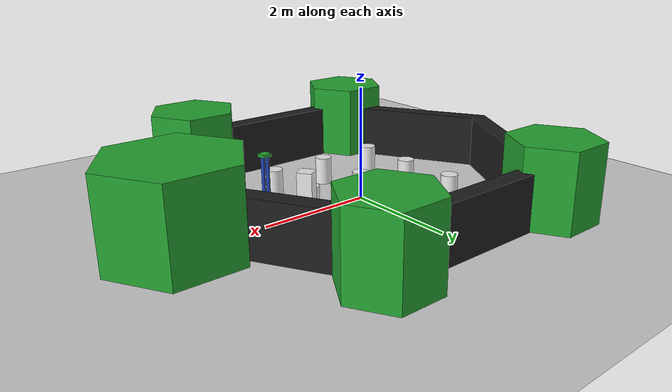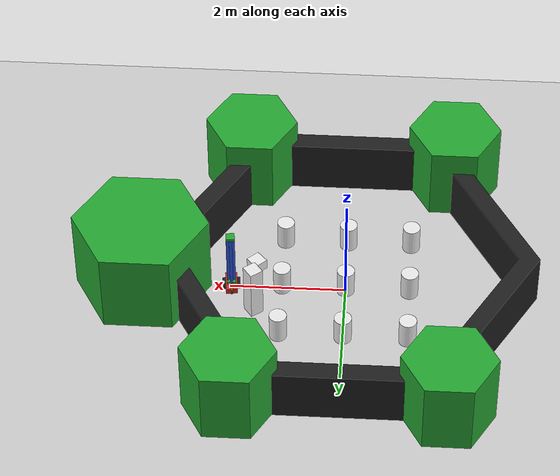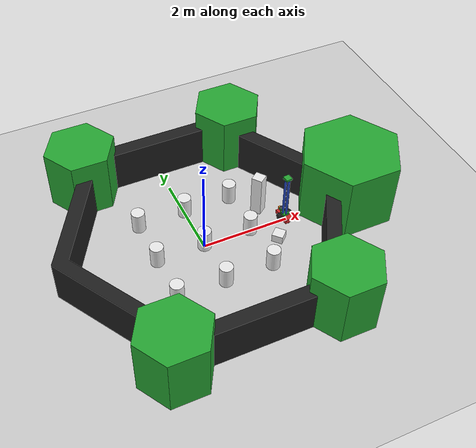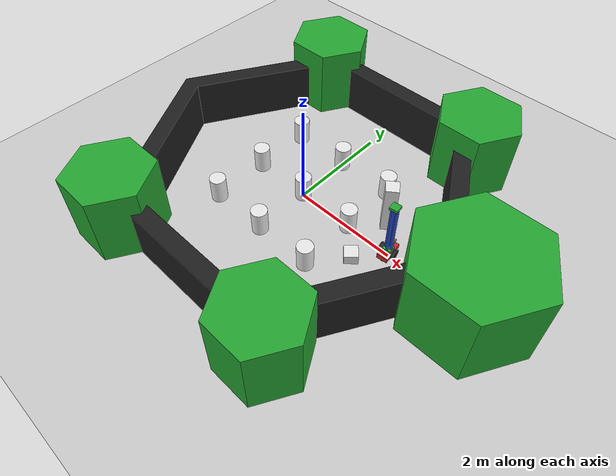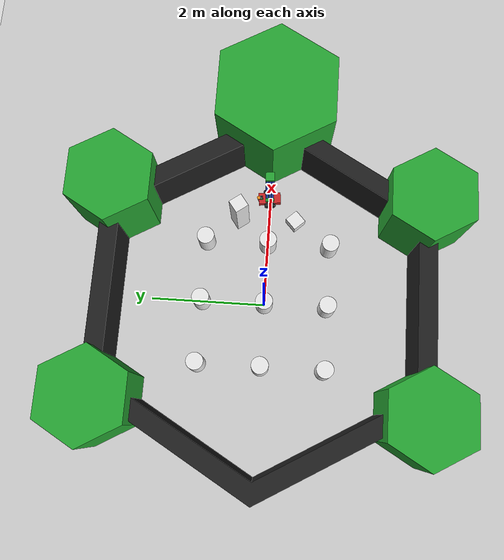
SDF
<sdf version="1.6">
 <world name="default">
  <light name="sun" type="directional">
   <pose>0 0 10 0 -0 0</pose>
   <diffuse>0.8 0.8 0.8 1</diffuse>
   <specular>0.2 0.2 0.2 1</specular>
   <attenuation>
    <range>1000</range>
    <constant>0.9</constant>
    <linear>0.01</linear>
    <quadratic>0.001</quadratic>
   </attenuation>
   <direction>-0.5 0.1 -0.9</direction>
  </light>
  <model name="ground_plane">
   <static>1</static>
   <link name="link">
    <collision name="collision">
     <geometry><plane><normal>0 0 1</normal><size>100 100</size></plane></geometry>
     <surface>
      <contact><collide_bitmask>65535</collide_bitmask></contact>
      <friction><ode><mu>100</mu><mu2>50</mu2></ode></friction>
     </surface>
    </collision>
    <visual name="visual">
     <cast_shadows>0</cast_shadows>
     <geometry><plane><normal>0 0 1</normal><size>100 100</size></plane></geometry>
     <material>
      <script><uri>file://media/materials/scripts/gazebo.material</uri><name>Gazebo/Grey</name></script>
     </material>
    </visual>
   </link>
  </model>
  <physics name="default_physics" default="0" type="ode">
   <real_time_update_rate>1000</real_time_update_rate>
   <max_step_size>0.001</max_step_size>
   <real_time_factor>1</real_time_factor>
   <ode>
    <solver>
     <type>quick</type>
     <iters>150</iters>
     <precon_iters>0</precon_iters>
     <sor>1.4</sor>
     <use_dynamic_moi_rescaling>1</use_dynamic_moi_rescaling>
    </solver>
    <constraints>
     <cfm>1e-05</cfm>
     <erp>0.2</erp>
     <contact_max_correcting_vel>2000</contact_max_correcting_vel>
     <contact_surface_layer>0.01</contact_surface_layer>
    </constraints>
   </ode>
  </physics>
  <model name="ros_symbol">
   <static>1</static>
   <link name="symbol">
    <collision name="one_one">
     <pose>-1.1 -1.1 0.25 0 -0 0</pose>
     <geometry><cylinder><radius>0.15</radius><length>0.5</length></cylinder></geometry>
    </collision>
    <visual name="one_one">
     <pose>-1.1 -1.1 0.25 0 -0 0</pose>
     <geometry><cylinder><radius>0.15</radius><length>0.5</length></cylinder></geometry>
     <material>
      <script><uri>file://media/materials/scripts/gazebo.material</uri><name>Gazebo/White</name></script>
     </material>
    </visual>
    <collision name="one_two">
     <pose>-1.1 0 0.25 0 -0 0</pose>
     <geometry><cylinder><radius>0.15</radius><length>0.5</length></cylinder></geometry>
    </collision>
    <visual name="one_two">
     <pose>-1.1 0 0.25 0 -0 0</pose>
     <geometry><cylinder><radius>0.15</radius><length>0.5</length></cylinder></geometry>
     <material>
      <script><uri>file://media/materials/scripts/gazebo.material</uri><name>Gazebo/White</name></script>
     </material>
    </visual>
    <collision name="one_three">
     <pose>-1.1 1.1 0.25 0 -0 0</pose>
     <geometry><cylinder><radius>0.15</radius><length>0.5</length></cylinder></geometry>
    </collision>
    <visual name="one_three">
     <pose>-1.1 1.1 0.25 0 -0 0</pose>
     <geometry><cylinder><radius>0.15</radius><length>0.5</length></cylinder></geometry>
     <material>
      <script><uri>file://media/materials/scripts/gazebo.material</uri><name>Gazebo/White</name></script>
     </material>
    </visual>
    <collision name="two_one">
     <pose>0 -1.1 0.25 0 -0 0</pose>
     <geometry><cylinder><radius>0.15</radius><length>0.5</length></cylinder></geometry>
    </collision>
    <visual name="two_one">
     <pose>0 -1.1 0.25 0 -0 0</pose>
     <geometry><cylinder><radius>0.15</radius><length>0.5</length></cylinder></geometry>
     <material>
      <script><uri>file://media/materials/scripts/gazebo.material</uri><name>Gazebo/White</name></script>
     </material>
    </visual>
    <collision name="two_two">
     <pose>0 0 0.25 0 -0 0</pose>
     <geometry><cylinder><radius>0.15</radius><length>0.5</length></cylinder></geometry>
    </collision>
    <visual name="two_two">
     <pose>0 0 0.25 0 -0 0</pose>
     <geometry><cylinder><radius>0.15</radius><length>0.5</length></cylinder></geometry>
     <material>
      <script><uri>file://media/materials/scripts/gazebo.material</uri><name>Gazebo/White</name></script>
     </material>
    </visual>
    <collision name="two_three">
     <pose>0 1.1 0.25 0 -0 0</pose>
     <geometry><cylinder><radius>0.15</radius><length>0.5</length></cylinder></geometry>
    </collision>
    <visual name="two_three">
     <pose>0 1.1 0.25 0 -0 0</pose>
     <geometry><cylinder><radius>0.15</radius><length>0.5</length></cylinder></geometry>
     <material>
      <script><uri>file://media/materials/scripts/gazebo.material</uri><name>Gazebo/White</name></script>
     </material>
    </visual>
    <collision name="three_one">
     <pose>1.1 -1.1 0.25 0 -0 0</pose>
     <geometry><cylinder><radius>0.15</radius><length>0.5</length></cylinder></geometry>
    </collision>
    <visual name="three_one">
     <pose>1.1 -1.1 0.25 0 -0 0</pose>
     <geometry><cylinder><radius>0.15</radius><length>0.5</length></cylinder></geometry>
     <material>
      <script><uri>file://media/materials/scripts/gazebo.material</uri><name>Gazebo/White</name></script>
     </material>
    </visual>
    <collision name="three_two">
     <pose>1.1 0 0.25 0 -0 0</pose>
     <geometry><cylinder><radius>0.15</radius><length>0.5</length></cylinder></geometry>
    </collision>
    <visual name="three_two">
     <pose>1.1 0 0.25 0 -0 0</pose>
     <geometry><cylinder><radius>0.15</radius><length>0.5</length></cylinder></geometry>
     <material>
      <script><uri>file://media/materials/scripts/gazebo.material</uri><name>Gazebo/White</name></script>
     </material>
    </visual>
    <collision name="three_three">
     <pose>1.1 1.1 0.25 0 -0 0</pose>
     <geometry><cylinder><radius>0.15</radius><length>0.5</length></cylinder></geometry>
    </collision>
    <visual name="three_three">
     <pose>1.1 1.1 0.25 0 -0 0</pose>
     <geometry><cylinder><radius>0.15</radius><length>0.5</length></cylinder></geometry>
     <material>
      <script><uri>file://media/materials/scripts/gazebo.material</uri><name>Gazebo/White</name></script>
     </material>
    </visual>
    <collision name="head">
     <pose>3.5 0 -0.5 0 -0 0</pose>
     <geometry>
      <mesh><uri>model://turtlebot3_world/meshes/hexagon.dae</uri><scale>0.8 0.8 0.8</scale></mesh>
     </geometry>
    </collision>
    <visual name="head">
     <pose>3.5 0 -0.5 0 -0 0</pose>
     <geometry>
      <mesh><uri>model://turtlebot3_world/meshes/hexagon.dae</uri><scale>0.8 0.8 0.8</scale></mesh>
     </geometry>
     <material>
      <script><uri>file://media/materials/scripts/gazebo.material</uri><name>Gazebo/Green</name></script>
     </material>
    </visual>
    <collision name="left_hand">
     <pose>1.8 2.7 0 0 -0 0</pose>
     <geometry>
      <mesh><uri>model://turtlebot3_world/meshes/hexagon.dae</uri><scale>0.55 0.55 0.55</scale></mesh>
     </geometry>
    </collision>
    <visual name="left_hand">
     <pose>1.8 2.7 0 0 -0 0</pose>
     <geometry>
      <mesh><uri>model://turtlebot3_world/meshes/hexagon.dae</uri><scale>0.55 0.55 0.55</scale></mesh>
     </geometry>
     <material>
      <script><uri>file://media/materials/scripts/gazebo.material</uri><name>Gazebo/Green</name></script>
     </material>
    </visual>
    <collision name="right_hand">
     <pose>1.8 -2.7 0 0 -0 0</pose>
     <geometry>
      <mesh><uri>model://turtlebot3_world/meshes/hexagon.dae</uri><scale>0.55 0.55 0.55</scale></mesh>
     </geometry>
    </collision>
    <visual name="right_hand">
     <pose>1.8 -2.7 0 0 -0 0</pose>
     <geometry>
      <mesh><uri>model://turtlebot3_world/meshes/hexagon.dae</uri><scale>0.55 0.55 0.55</scale></mesh>
     </geometry>
     <material>
      <script><uri>file://media/materials/scripts/gazebo.material</uri><name>Gazebo/Green</name></script>
     </material>
    </visual>
    <collision name="left_foot">
     <pose>-1.8 2.7 0 0 -0 0</pose>
     <geometry>
      <mesh><uri>model://turtlebot3_world/meshes/hexagon.dae</uri><scale>0.55 0.55 0.55</scale></mesh>
     </geometry>
    </collision>
    <visual name="left_foot">
     <pose>-1.8 2.7 0 0 -0 0</pose>
     <geometry>
      <mesh><uri>model://turtlebot3_world/meshes/hexagon.dae</uri><scale>0.55 0.55 0.55</scale></mesh>
     </geometry>
     <material>
      <script><uri>file://media/materials/scripts/gazebo.material</uri><name>Gazebo/Green</name></script>
     </material>
    </visual>
    <collision name="right_foot">
     <pose>-1.8 -2.7 0 0 -0 0</pose>
     <geometry>
      <mesh><uri>model://turtlebot3_world/meshes/hexagon.dae</uri><scale>0.55 0.55 0.55</scale></mesh>
     </geometry>
    </collision>
    <visual name="right_foot">
     <pose>-1.8 -2.7 0 0 -0 0</pose>
     <geometry>
      <mesh><uri>model://turtlebot3_world/meshes/hexagon.dae</uri><scale>0.55 0.55 0.55</scale></mesh>
     </geometry>
     <material>
      <script><uri>file://media/materials/scripts/gazebo.material</uri><name>Gazebo/Green</name></script>
     </material>
    </visual>
    <collision name="body">
     <pose>0 0 -0.3 0 0 -1.5708</pose>
     <geometry>
      <mesh><uri>model://turtlebot3_world/meshes/wall.dae</uri><scale>0.25 0.25 0.25</scale></mesh>
     </geometry>
    </collision>
    <visual name="body">
     <pose>0 0 -0.3 0 0 -1.5708</pose>
     <geometry>
      <mesh><uri>model://turtlebot3_world/meshes/wall.dae</uri><scale>0.25 0.25 0.25</scale></mesh>
     </geometry>
     <material>
      <script><uri>file://media/materials/scripts/gazebo.material</uri><name>Gazebo/FlatBlack</name></script>
     </material>
    </visual>
   </link>
  </model>
  <scene><ambient>0.4 0.4 0.4 1</ambient><background>0.7 0.7 0.7 1</background><shadows>1</shadows></scene>
  <gravity>0 0 -9.8</gravity>
  <magnetic_field>6e-06 2.3e-05 -4.2e-05</magnetic_field>
  <atmosphere type="adiabatic"/>
  <audio><device>default</device></audio>
  <spherical_coordinates>
   <surface_model>EARTH_WGS84</surface_model>
   <latitude_deg>0</latitude_deg>
   <longitude_deg>0</longitude_deg>
   <elevation>0</elevation>
   <heading_deg>0</heading_deg>
  </spherical_coordinates>
  <model name="rawbot">
   <link name="base_footprint">
    <inertial>
     <pose>0.007726 0 0.2666 0 -0 0</pose>
     <mass>22.1038</mass>
     <inertia>
      <ixx>2.90894</ixx>
      <ixy>-8.544e-10</ixy>
      <ixz>0.0157015</ixz>
      <iyy>2.93427</iyy>
      <iyz>3.4084e-09</iyz>
      <izz>0.835341</izz>
     </inertia>
    </inertial>
    <collision name="base_footprint_fixed_joint_lump__base_link_collision">
     <pose>0 0 0.1 0 -0 0</pose>
     <geometry><box><size>0.4 0.2 0.1</size></box></geometry>
    </collision>
    <collision name="base_footprint_fixed_joint_lump__base_link_collision_1">
     <pose>-0.15 0 0.05 0 -0 0</pose>
     <geometry><sphere><radius>0.0499</radius></sphere></geometry>
    </collision>
    <collision name="base_footprint_fixed_joint_lump__base_link_collision_2">
     <pose>0.15 0 0.05 0 -0 0</pose>
     <geometry><sphere><radius>0.0499</radius></sphere></geometry>
    </collision>
    <collision name="base_footprint_fixed_joint_lump__camera_link_collision_3">
     <pose>0.2 0 0.175 0 -0 0</pose>
     <geometry><box><size>0.05 0.05 0.05</size></box></geometry>
    </collision>
    <collision name="base_footprint_fixed_joint_lump__front_sonar_link_collision_4">
     <pose>0.1 0 0.1 0 -0 0</pose>
     <geometry><box><size>0.02 0.05 0.02</size></box></geometry>
    </collision>
    <collision name="base_footprint_fixed_joint_lump__lidar_support_link_collision_5">
     <pose>0.15 0 0.175 0 -0 0</pose>
     <geometry><box><size>0.05 0.05 0.05</size></box></geometry>
    </collision>
    <collision name="base_footprint_fixed_joint_lump__base_scan_collision_6">
     <pose>0.15 0 0.225 0 -0 0</pose>
     <geometry><box><size>0.05 0.05 0.05</size></box></geometry>
    </collision>
    <collision name="base_footprint_fixed_joint_lump__uvc1_link_collision_7">
     <pose>0.05 0 0.7 0 -0 0</pose>
     <geometry><cylinder><length>1</length><radius>0.025</radius></cylinder></geometry>
    </collision>
    <collision name="base_footprint_fixed_joint_lump__uvc2_link_collision_8">
     <pose>0 0.05 0.7 0 -0 0</pose>
     <geometry><cylinder><length>1</length><radius>0.025</radius></cylinder></geometry>
    </collision>
    <collision name="base_footprint_fixed_joint_lump__uvc3_link_collision_9">
     <pose>-0.05 0 0.7 0 -0 0</pose>
     <geometry><cylinder><length>1</length><radius>0.025</radius></cylinder></geometry>
    </collision>
    <collision name="base_footprint_fixed_joint_lump__uvc4_link_collision_10">
     <pose>0 -0.05 0.7 0 -0 0</pose>
     <geometry><cylinder><length>1</length><radius>0.025</radius></cylinder></geometry>
    </collision>
    <collision name="base_footprint_fixed_joint_lump__uvc_support1_link_collision_11">
     <pose>0 0 0.175 0 -0 0</pose>
     <geometry><box><size>0.15 0.15 0.05</size></box></geometry>
    </collision>
    <collision name="base_footprint_fixed_joint_lump__uvc_support2_link_collision_12">
     <pose>0 0 1.225 0 -0 0</pose>
     <geometry><box><size>0.15 0.15 0.05</size></box></geometry>
    </collision>
    <visual name="base_footprint_fixed_joint_lump__base_link_visual">
     <pose>0 0 0.1 0 -0 0</pose>
     <geometry><box><size>0.4 0.2 0.1</size></box></geometry>
     <material>
      <script><name>Gazebo/Red</name><uri>file://media/materials/scripts/gazebo.material</uri></script>
     </material>
    </visual>
    <visual name="base_footprint_fixed_joint_lump__base_link_visual_1">
     <pose>-0.15 0 0.05 0 -0 0</pose>
     <geometry><sphere><radius>0.05</radius></sphere></geometry>
     <material>
      <script><name>Gazebo/Red</name><uri>file://media/materials/scripts/gazebo.material</uri></script>
     </material>
    </visual>
    <visual name="base_footprint_fixed_joint_lump__base_link_visual_2">
     <pose>0.15 0 0.05 0 -0 0</pose>
     <geometry><sphere><radius>0.05</radius></sphere></geometry>
     <material>
      <script><name>Gazebo/Red</name><uri>file://media/materials/scripts/gazebo.material</uri></script>
     </material>
    </visual>
    <visual name="base_footprint_fixed_joint_lump__camera_link_visual_3">
     <pose>0.2 0 0.175 0 -0 0</pose>
     <geometry><box><size>0.05 0.05 0.05</size></box></geometry>
     <material>
      <script><name>Gazebo/Orange</name><uri>file://media/materials/scripts/gazebo.material</uri></script>
     </material>
    </visual>
    <visual name="base_footprint_fixed_joint_lump__front_sonar_link_visual_4">
     <pose>0.201 -0.022557 0.11023 0 -0 0</pose>
     <geometry>
      <mesh>
       <scale>1 1 1</scale>
       <uri>/home/rajendra/slam_rosmelodic_ws/src/test_slam/meshes/sensors/range_sensor.STL</uri>
      </mesh>
     </geometry>
     <material><script><uri>__default__</uri><name>__default__</name></script></material>
    </visual>
    <visual name="base_footprint_fixed_joint_lump__lidar_support_link_visual_5">
     <pose>0.15 0 0.175 0 -0 0</pose>
     <geometry><box><size>0.05 0.05 0.05</size></box></geometry>
     <material>
      <script><name>Gazebo/Green</name><uri>file://media/materials/scripts/gazebo.material</uri></script>
     </material>
    </visual>
    <visual name="base_footprint_fixed_joint_lump__base_scan_visual_6">
     <pose>0.15 0 0.225 0 -0 0</pose>
     <geometry>
      <mesh>
       <scale>1 1 1</scale>
       <uri>/home/rajendra/slam_rosmelodic_ws/src/test_slam/meshes/sensors/hokuyo.dae</uri>
      </mesh>
     </geometry>
     <material><script><uri>__default__</uri><name>__default__</name></script></material>
    </visual>
    <visual name="base_footprint_fixed_joint_lump__uvc1_link_visual_7">
     <pose>0.05 0 0.7 0 -0 0</pose>
     <geometry><cylinder><length>1</length><radius>0.025</radius></cylinder></geometry>
     <material>
      <script><name>Gazebo/Blue</name><uri>file://media/materials/scripts/gazebo.material</uri></script>
     </material>
    </visual>
    <visual name="base_footprint_fixed_joint_lump__uvc2_link_visual_8">
     <pose>0 0.05 0.7 0 -0 0</pose>
     <geometry><cylinder><length>1</length><radius>0.025</radius></cylinder></geometry>
     <material>
      <script><name>Gazebo/Blue</name><uri>file://media/materials/scripts/gazebo.material</uri></script>
     </material>
    </visual>
    <visual name="base_footprint_fixed_joint_lump__uvc3_link_visual_9">
     <pose>-0.05 0 0.7 0 -0 0</pose>
     <geometry><cylinder><length>1</length><radius>0.025</radius></cylinder></geometry>
     <material>
      <script><name>Gazebo/Blue</name><uri>file://media/materials/scripts/gazebo.material</uri></script>
     </material>
    </visual>
    <visual name="base_footprint_fixed_joint_lump__uvc4_link_visual_10">
     <pose>0 -0.05 0.7 0 -0 0</pose>
     <geometry><cylinder><length>1</length><radius>0.025</radius></cylinder></geometry>
     <material>
      <script><name>Gazebo/Blue</name><uri>file://media/materials/scripts/gazebo.material</uri></script>
     </material>
    </visual>
    <visual name="base_footprint_fixed_joint_lump__uvc_support1_link_visual_11">
     <pose>0 0 0.175 0 -0 0</pose>
     <geometry><box><size>0.15 0.15 0.05</size></box></geometry>
     <material>
      <script><name>Gazebo/Green</name><uri>file://media/materials/scripts/gazebo.material</uri></script>
     </material>
    </visual>
    <visual name="base_footprint_fixed_joint_lump__uvc_support2_link_visual_12">
     <pose>0 0 1.225 0 -0 0</pose>
     <geometry><box><size>0.15 0.15 0.05</size></box></geometry>
     <material>
      <script><name>Gazebo/Green</name><uri>file://media/materials/scripts/gazebo.material</uri></script>
     </material>
    </visual>
    <sensor name="camera1" type="depth">
     <always_on>1</always_on>
     <update_rate>20</update_rate>
     <visualize>1</visualize>
     <camera name="__default__">
      <horizontal_fov>1.047</horizontal_fov>
      <image><width>640</width><height>480</height><format>R8G8B8</format></image>
      <depth_camera><output>depths</output></depth_camera>
      <clip><near>0.1</near><far>20</far></clip>
     </camera>
     <plugin name="camera_controller" filename="libgazebo_ros_openni_kinect.so">
      <alwaysOn>1</alwaysOn>
      <updateRate>10.0</updateRate>
      <cameraName>camera_link</cameraName>
      <frameName>camera_link_optical</frameName>
      <imageTopicName>/rawbot/camera/rgb/image_raw</imageTopicName>
      <depthImageTopicName>/rawbot/camera/depth/image_raw</depthImageTopicName>
      <pointCloudTopicName>depth/points</pointCloudTopicName>
      <cameraInfoTopicName>rgb/camera_info</cameraInfoTopicName>
      <depthImageCameraInfoTopicName>/rawbot/camera/rgb/camera_info</depthImageCameraInfoTopicName>
      <pointCloudCutoff>0.4</pointCloudCutoff>
      <hackBaseline>0.07</hackBaseline>
      <distortionK1>0.0</distortionK1>
      <distortionK2>0.0</distortionK2>
      <distortionK3>0.0</distortionK3>
      <distortionT1>0.0</distortionT1>
      <distortionT2>0.0</distortionT2>
      <CxPrime>0.0</CxPrime>
      <Cx>0.0</Cx>
      <Cy>0.0</Cy>
      <focalLength>0.0</focalLength>
      <robotNamespace>/</robotNamespace>
     </plugin>
     <pose>0.2 0 0.175 0 -0 0</pose>
    </sensor>
    <sensor name="front_sonar" type="ray">
     <visualize>1</visualize>
     <update_rate>5</update_rate>
     <ray>
      <scan>
       <horizontal>
        <samples>5</samples>
        <resolution>1</resolution>
        <min_angle>-0.09</min_angle>
        <max_angle>0.09</max_angle>
       </horizontal>
       <vertical>
        <samples>5</samples>
        <resolution>1</resolution>
        <min_angle>-0.09</min_angle>
        <max_angle>0.09</max_angle>
       </vertical>
      </scan>
      <range><min>0.02</min><max>1</max><resolution>0.01</resolution></range>
     </ray>
     <plugin name="gazebo_ros_range" filename="libgazebo_ros_range.so">
      <gaussianNoise>0.005</gaussianNoise>
      <alwaysOn>1</alwaysOn>
      <updateRate>5</updateRate>
      <topicName>front_sonar</topicName>
      <frameName>front_sonar_link</frameName>
      <radiation>ULTRASOUND</radiation>
      <fov>0.2</fov>
      <robotNamespace>/</robotNamespace>
     </plugin>
     <pose>0.2 0 0.1 0 -0 0</pose>
    </sensor>
    <sensor name="head_hokuyo_sensor" type="ray">
     <visualize>0</visualize>
     <update_rate>40</update_rate>
     <ray>
      <scan>
       <horizontal>
        <samples>720</samples>
        <resolution>1</resolution>
        <min_angle>-3.14</min_angle>
        <max_angle>3.14</max_angle>
       </horizontal>
       <vertical><samples>1</samples><min_angle>0</min_angle><max_angle>0</max_angle></vertical>
      </scan>
      <range><min>0.1</min><max>30</max><resolution>0.01</resolution></range>
      <noise><type>gaussian</type><mean>0</mean><stddev>0.01</stddev></noise>
     </ray>
     <plugin name="gazebo_ros_head_hokuyo_controller" filename="libgazebo_ros_laser.so">
      <topicName>/scan</topicName>
      <frameName>base_scan</frameName>
      <robotNamespace>/</robotNamespace>
     </plugin>
     <pose>0.15 0 0.225 0 -0 0</pose>
    </sensor>
   </link>
   <link name="wheel_left_link">
    <pose>0 0.126 0.1 0 -0 0</pose>
    <inertial>
     <pose>0 0 0 -0 1.5707 1.5707</pose>
     <mass>5</mass>
     <inertia><ixx>0.1</ixx><ixy>0</ixy><ixz>0</ixz><iyy>0.1</iyy><iyz>0</iyz><izz>0.1</izz></inertia>
    </inertial>
    <collision name="wheel_left_link_collision">
     <pose>0 0 0 3.14159 1.57079 -1.57089</pose>
     <geometry><cylinder><length>0.05</length><radius>0.1</radius></cylinder></geometry>
    </collision>
    <visual name="wheel_left_link_visual">
     <pose>0 0 0 3.14159 1.57079 -1.57089</pose>
     <geometry><cylinder><length>0.05</length><radius>0.1</radius></cylinder></geometry>
     <material>
      <script><name>Gazebo/Black</name><uri>file://media/materials/scripts/gazebo.material</uri></script>
     </material>
    </visual>
   </link>
   <joint name="wheel_left_joint" type="revolute">
    <child>wheel_left_link</child>
    <parent>base_footprint</parent>
    <axis>
     <xyz>0 1 0</xyz>
     <limit><lower>-1e+16</lower><upper>1e+16</upper></limit>
     <dynamics>
      <damping>1</damping>
      <friction>1</friction>
      <spring_reference>0</spring_reference>
      <spring_stiffness>0</spring_stiffness>
     </dynamics>
     <use_parent_model_frame>1</use_parent_model_frame>
    </axis>
   </joint>
   <link name="wheel_right_link">
    <pose>0 -0.126 0.1 0 -0 0</pose>
    <inertial>
     <pose>0 0 0 -0 1.5707 1.5707</pose>
     <mass>5</mass>
     <inertia><ixx>0.1</ixx><ixy>0</ixy><ixz>0</ixz><iyy>0.1</iyy><iyz>0</iyz><izz>0.1</izz></inertia>
    </inertial>
    <collision name="wheel_right_link_collision">
     <pose>0 0 0 3.14159 1.57079 -1.57089</pose>
     <geometry><cylinder><length>0.05</length><radius>0.1</radius></cylinder></geometry>
    </collision>
    <visual name="wheel_right_link_visual">
     <pose>0 0 0 3.14159 1.57079 -1.57089</pose>
     <geometry><cylinder><length>0.05</length><radius>0.1</radius></cylinder></geometry>
     <material>
      <script><name>Gazebo/Black</name><uri>file://media/materials/scripts/gazebo.material</uri></script>
     </material>
    </visual>
   </link>
   <joint name="wheel_right_joint" type="revolute">
    <child>wheel_right_link</child>
    <parent>base_footprint</parent>
    <axis>
     <xyz>0 1 0</xyz>
     <limit><lower>-1e+16</lower><upper>1e+16</upper></limit>
     <dynamics>
      <damping>1</damping>
      <friction>1</friction>
      <spring_reference>0</spring_reference>
      <spring_stiffness>0</spring_stiffness>
     </dynamics>
     <use_parent_model_frame>1</use_parent_model_frame>
    </axis>
   </joint>
   <static>0</static>
   <plugin name="differential_drive_controller" filename="libgazebo_ros_diff_drive.so">
    <legacyMode>0</legacyMode>
    <alwaysOn>1</alwaysOn>
    <updateRate>10</updateRate>
    <leftJoint>wheel_left_joint</leftJoint>
    <rightJoint>wheel_right_joint</rightJoint>
    <wheelSeparation>0.4</wheelSeparation>
    <wheelDiameter>0.2</wheelDiameter>
    <torque>10</torque>
    <commandTopic>cmd_vel</commandTopic>
    <odometryTopic>odom</odometryTopic>
    <odometryFrame>odom</odometryFrame>
    <robotBaseFrame>base_footprint</robotBaseFrame>
    <publishWheelTF>0</publishWheelTF>
    <publishWheelJointState>1</publishWheelJointState>
    <rosDebugLevel>na</rosDebugLevel>
    <wheelAcceleration>0</wheelAcceleration>
    <wheelTorque>5</wheelTorque>
    <odometrySource>world</odometrySource>
    <publishTf>1</publishTf>
    <publishOdomTF>1</publishOdomTF>
    <robotNamespace>/</robotNamespace>
   </plugin>
   <pose>1.97453 0.02494 -5e-06 -4e-06 0.000635 1.68447</pose>
  </model>
  <model name="unit_box">
   <pose>1.55665 0.534231 0.499998 3e-06 0 0.634491</pose>
   <link name="link">
    <inertial>
     <mass>1</mass>
     <inertia>
      <ixx>0.166667</ixx>
      <ixy>0</ixy>
      <ixz>0</ixz>
      <iyy>0.166667</iyy>
      <iyz>0</iyz>
      <izz>0.166667</izz>
     </inertia>
    </inertial>
    <collision name="collision">
     <geometry><box><size>0.236861 0.245475 0.999996</size></box></geometry>
    </collision>
    <visual name="visual">
     <geometry><box><size>0.236861 0.245475 0.999996</size></box></geometry>
     <material>
      <script><name>Gazebo/White</name><uri>file://media/materials/scripts/gazebo.material</uri></script>
     </material>
    </visual>
   </link>
  </model>
  <model name="unit_box_clone">
   <pose>1.57049 -0.469686 0.096232 -0 -8e-06 0.744879</pose>
   <link name="link">
    <inertial>
     <mass>1</mass>
     <inertia>
      <ixx>0.166667</ixx>
      <ixy>0</ixy>
      <ixz>0</ixz>
      <iyy>0.166667</iyy>
      <iyz>0</iyz>
      <izz>0.166667</izz>
     </inertia>
    </inertial>
    <collision name="collision"><geometry><box><size>0.249369 0.24866 0.192462</size></box></geometry></collision>
    <visual name="visual">
     <geometry><box><size>0.249369 0.24866 0.192462</size></box></geometry>
     <material>
      <script><name>Gazebo/White</name><uri>file://media/materials/scripts/gazebo.material</uri></script>
     </material>
    </visual>
   </link>
  </model>
 </world>
</sdf>
